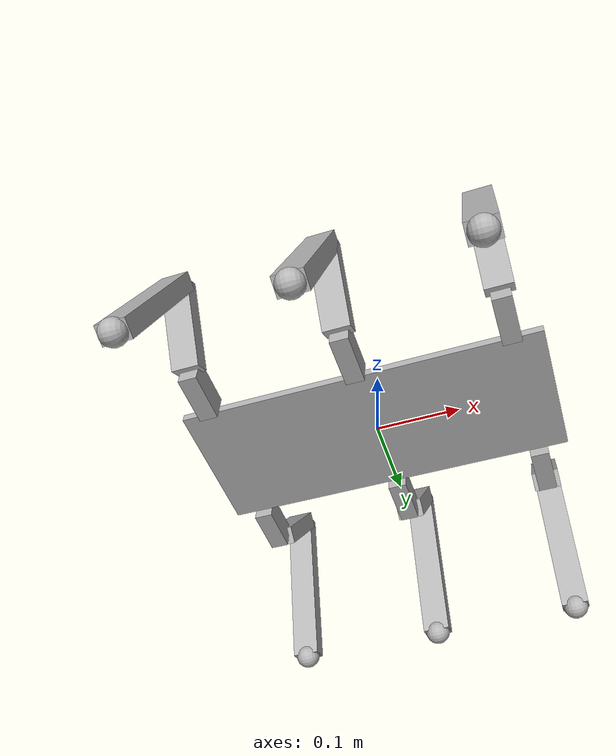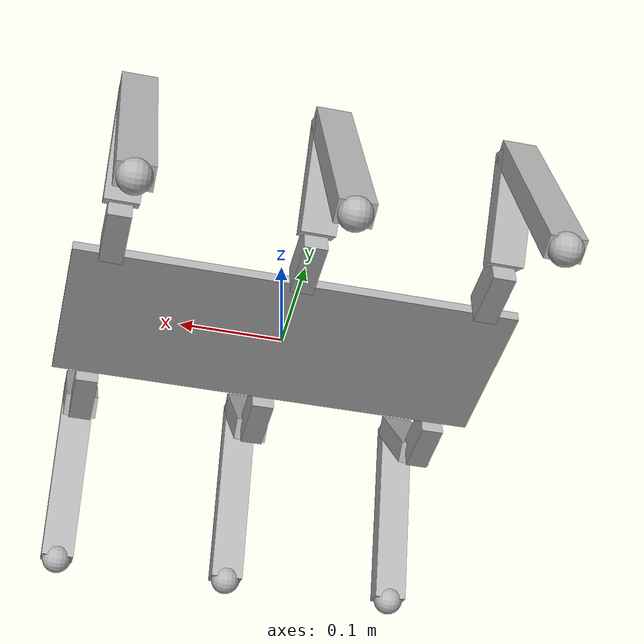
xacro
<?xml version="1.0"?>
<robot xmlns:xacro="http://ros.org/wiki/xacro" name="hexapodo">

    <xacro:include filename="$(find hexapodo_description)/urdf/parametros_3dof.xacro" />

    <!-- Build the body frame -->
    <link name="map" />

    <joint name="base_joint" type="fixed">
        <parent link="map" />
        <child link="base_link" />
        <origin xyz="0 0 0" rpy="0 0 0" />
    </joint>
    <link name="base_link">
		<inertial>
			<origin    xyz="0 0 0" rpy="0 0 0" />
			<mass value="${masa_base}" />
			<box_inertia  m="${masa_base}" x="${long_cuerpo_x}" y="${long_cuerpo_y}" z="${long_cuerpo_z}"/>
		</inertial>
        <visual>
        	<origin    xyz="0 0 0" rpy="0 0 0" />
        	<geometry>
        		<box size="${1.2*long_cuerpo_x} ${long_cuerpo_y} ${long_cuerpo_z}"/>
      		</geometry>
            <material name="">
            	<color rgba="0.7 0.7 0.7 1" />
            </material>
		</visual>
	    <collision>
     	   <origin    xyz="0 0 0" rpy="0 0 0" />
           <geometry>
			<box size="${long_cuerpo_x} ${long_cuerpo_y} 0.004"/>
           </geometry>
		</collision>
    </link>

	<gazebo reference="base_link">
		<material>Gazebo/Orange</material>
    </gazebo>

    <!-- Leg macro -->
    <xacro:macro name="leg" params="side position x y angle axis">

        <!-- leg position -->
    	<joint name="leg_center_joint_${side}${position}" type="fixed">
            <origin xyz="${x} ${y} 0" rpy="0 0 0" />
            <parent link="base_link" />
            <child link="leg_center_${side}${position}" />
        </joint>

        <link name="leg_center_${side}${position}">
			<inertial>
				<origin    xyz="0 0 0" rpy="0 0 0" />
				<mass value="${masa_base}" />
				<box_inertia  m="${masa_base}" x="${long_cuerpo_x}" y="${long_cuerpo_y}" z="${long_cuerpo_z}"/>
			</inertial>
		</link>

        <!-- coxa -->
        <joint name="coxa_joint_${side}${position}" type="revolute">
            <origin xyz="0 0 0" rpy="0 0 ${angle}" />
            <parent link="leg_center_${side}${position}" />
            <child link="coxa_${side}${position}" />
            <axis xyz="0 0 ${axis}" />
            <limit lower="${lim_joint_inferior}" upper="${lim_joint_superior}" effort="${max_esfu}" velocity="${max_vel}" />
        </joint>
		<transmission name="coxa_joint_${side}${position}_Transmission">
			<type>transmission_interface/SimpleTransmission</type>
			<joint name="coxa_joint_${side}${position}">
				<hardwareInterface>EffortJointInterface</hardwareInterface>
			</joint>
			<actuator name="coxa_joint_${side}${position}_Motor">
				<hardwareInterface>EffortJointInterface</hardwareInterface>
				<mechanicalReduction>1</mechanicalReduction>
			</actuator>
		</transmission>
        <link name="coxa_${side}${position}">
	   		<inertial>
      			<origin xyz="0 0 0" rpy="0 0 0" />
      			<mass value="${masa_coxa}" />
      			<box_inertia  m="${masa_coxa}" x="${2*long_coxa}" y="0.022" z="0.0325"/>
    		</inertial>
            <visual>
                <origin xyz="${long_coxa/2} 0 0" rpy="0 0 0" />
            	<geometry>
                    <box size="${long_coxa} 0.022 0.0325" />
                </geometry>
                <material name="">
                    <color rgba="0.7 0.7 0.7 1" />
                </material>
            </visual>
			<collision>
 	           <origin xyz="${long_coxa/2} 0 0" rpy="0 0 0" />
               <geometry>
                    <box size="${long_coxa} 0.022 0.0325" />
               </geometry>
 		    </collision>
		</link>
		<gazebo reference="coxa_${side}${position}">
			<material>Gazebo/Yellow</material>
		</gazebo>

        <!-- femur -->
        <joint name="femur_joint_${side}${position}" type="revolute">
            <origin xyz="${long_coxa} 0 0" rpy="-${pi/2} +0.63 0" />
            <parent link="coxa_${side}${position}" />
            <child link="femur_${side}${position}" />
            <axis xyz="0 0 ${axis}" />
            <limit lower="${lim_joint_inferior}" upper="${lim_joint_superior}" effort="${max_esfu}" velocity="${max_vel}" />
        </joint>
		<transmission name="femur_joint_${side}${position}_Transmission">
			<type>transmission_interface/SimpleTransmission</type>
			<joint name="femur_joint_${side}${position}">
				<hardwareInterface>EffortJointInterface</hardwareInterface>
			</joint>
			<actuator name="femur_joint_${side}${position}_Motor">
				<hardwareInterface>EffortJointInterface</hardwareInterface>
				<mechanicalReduction>1</mechanicalReduction>
			</actuator>
		</transmission>
        <link name="femur_${side}${position}">
	   		<inertial>
      			<origin xyz="0 -${long_femur/2} 0" rpy="0 0 0" />
      			<mass value="${masa_femur}" />
      			<box_inertia  m="${masa_femur}" x="0.022" y="${long_femur}" z="0.0325"/>
    		</inertial>
            <visual>
                <origin xyz="0 -${long_femur/2} 0" rpy="0 0 0" />
                <geometry>
                    <box size="0.022 ${long_femur} 0.0325" />
                </geometry>
                <material name="">
                    <color rgba="0.7 0.7 0.7 1" />
                </material>
            </visual>
	    	<collision>
           		<origin xyz="0 -${long_femur/2} 0" rpy="0 0 0" />
                <geometry>
            	    <box size="0.022 ${long_femur} 0.0325" />
                </geometry>
      		</collision>
		</link>
		<gazebo reference="femur_${side}${position}">
			<material>Gazebo/Yellow</material>
		</gazebo>

        <!-- tibia -->
        <joint name="tibia_joint_${side}${position}" type="revolute">
            <origin xyz="0 -${long_femur} 0" rpy="${pi} 0 0.63" />
            <parent link="femur_${side}${position}" />
            <child link="tibia_${side}${position}" />
            <axis xyz="0 0 ${axis}" />
            <limit lower="${lim_joint_inferior}" upper="${lim_joint_superior}" effort="${max_esfu}" velocity="${max_vel}" />
        </joint>
		<transmission name="tibia_joint_${side}${position}_Transmission">
			<type>transmission_interface/SimpleTransmission</type>
			<joint name="tibia_joint_${side}${position}">
				<hardwareInterface>EffortJointInterface</hardwareInterface>
			</joint>
			<actuator name="tibia_joint_${side}${position}_Motor">
				<hardwareInterface>EffortJointInterface</hardwareInterface>
				<mechanicalReduction>1</mechanicalReduction>
			</actuator>
		</transmission>
        <link name="tibia_${side}${position}">
	    	<inertial>
      			<origin xyz="${long_tibia/2} 0 0" rpy="0 0 0" />
      			<mass value="${masa_tibia}" />
      			<box_inertia  m="${masa_tibia}" x="${long_tibia}" y="0.022" z="0.0325"/>
    		</inertial>
            <visual>
                <origin xyz="${long_tibia/2} 0 0" rpy="0 0 0" />
                  <geometry>
                    <box size="${long_tibia} 0.022 0.0325" />
                  </geometry>
                <material name="">
                    <color rgba="0.7 0.7 0.7 1" />
                </material>
            </visual>
			<visual>
                <origin xyz="${long_tibia} 0 0" rpy="0 0 0" />
                  <geometry>
                    <sphere radius="0.015"/>
                  </geometry>
                <material name="">
                    <color rgba="0.7 0.7 0.7 1" />
                </material>
            </visual>
	    	<collision>
           		<origin xyz="${long_tibia/2} 0 0" rpy="0 0 0" />
                <geometry>
                	<box size="${long_tibia} 0.022 0.0325" />
                </geometry>
      		</collision>
			<collision>
           		<origin xyz="${long_tibia} 0 0" rpy="0 0 0" />
                	<geometry>
                	    <sphere radius="0.015"/>
                	</geometry>
      		</collision>
        </link>
		<gazebo reference="tibia_${side}${position}">
			<material>Gazebo/Yellow</material>
		</gazebo>

		<gazebo reference="tibia_${side}${position}">
  			<mu1 value="1000.0"/>
  			<mu2 value="1000.0"/>
  			<kp  value="100000.0" />
  			<kd  value="10.0" />
    		<maxContacts>20</maxContacts>
		</gazebo>

    </xacro:macro>

	<gazebo>
        <plugin filename="libgazebo_ros_control.so" name="gazebo_ros_control">
            <robotNamespace>/hexapodo</robotNamespace>
            <robotSimType>gazebo_ros_control/DefaultRobotHWSim</robotSimType>
        </plugin>
    </gazebo>

<!-- Build robot model -->
    <xacro:leg side="R" position="R" x="0.1778" y="-0.08335" angle="-${pi/2}" axis="1" />
    <xacro:leg side="R" position="M" x="0.0" y="-0.08335" angle="-${pi/2}" axis="1" />
    <xacro:leg side="R" position="F" x="-0.1778" y="-0.08335" angle="-${pi/2}" axis="1" />
    <xacro:leg side="L" position="R" x="0.1778" y="0.08335" angle="${pi/2}" axis="-1" />
    <xacro:leg side="L" position="M" x="0.0" y="0.08335" angle="${pi/2}" axis="-1" />
    <xacro:leg side="L" position="F" x="-0.1778" y="0.08335" angle="${pi/2}" axis="-1" />

</robot>

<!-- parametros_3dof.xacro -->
<robot xmlns:xacro="http://ros.org/wiki/xacro">
    <xacro:property name="pi" value="3.1415926535897931" />
    <xacro:property name="long_cuerpo_x" value="0.3556" />
    <xacro:property name="long_cuerpo_y" value="0.165" />
    <xacro:property name="long_cuerpo_z" value="0.01" />
    <xacro:property name="long_coxa" value="0.05893" />
    <xacro:property name="long_femur" value="0.10798" />
    <xacro:property name="long_tibia" value="0.2" />
    <xacro:property name="long_tarsus" value="0.12065" />

    <xacro:property name="masa_base" value="0.5" />
    <xacro:property name="masa_tarsus" value="0.15" />
    <xacro:property name="masa_tibia" value="0.15" />
    <xacro:property name="masa_femur" value="0.15" />
    <xacro:property name="masa_coxa" value="0.15" />

    <macro name="box_inertia" params="m x y z">
    <inertia  ixx="${500*m*(y*y+z*z)/12}" ixy = "0" ixz = "0"
              iyy="${500*m*(x*x+z*z)/12}" iyz = "0"
              izz="${500*m*(x*x+z*z)/12}" />
    </macro>

	<!-- Propiedades articulaciones -->
    <xacro:property name="lim_joint_inferior" value="-${3.14}" />
    <xacro:property name="lim_joint_superior" value="${3.14}" />
    <xacro:property name="max_esfu" value="10000" />
    <xacro:property name="max_vel" value="100" />
</robot>
